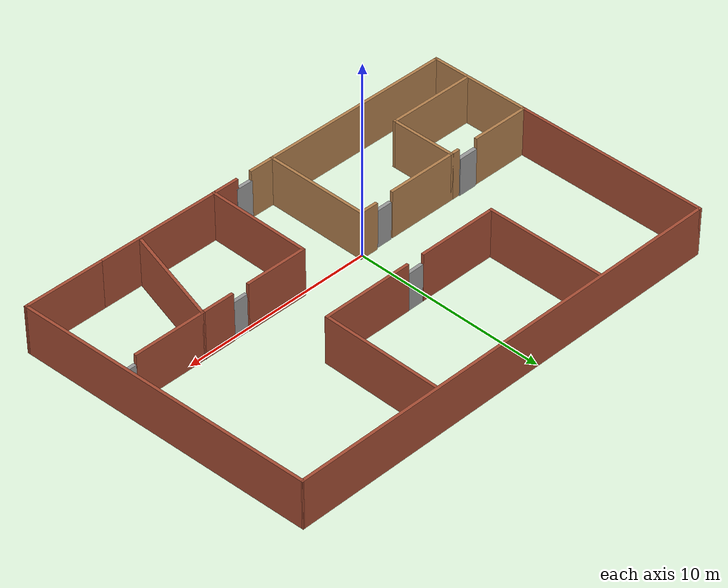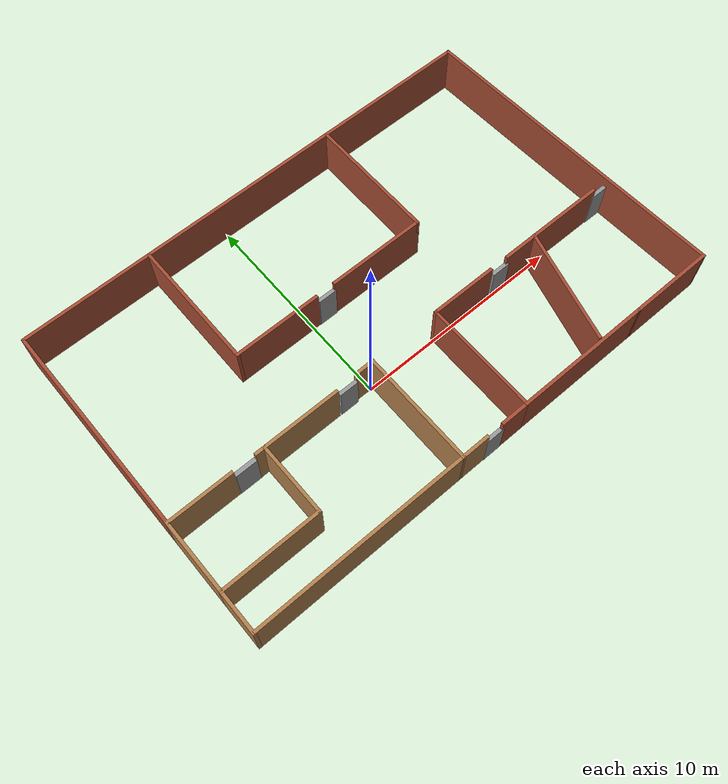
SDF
<?xml version='1.0'?>
<sdf version='1.7'>
  <model name='Building'>
    <pose>2.00147 2.363 0 0 -0 0</pose>
    <link name='Door_0'>
      <collision name='Door_0_Collision'>
        <geometry>
          <box>
            <size>1.03059 0.2 2</size>
          </box>
        </geometry>
        <pose>0 0 1 0 -0 0</pose>
      </collision>
      <visual name='Door_0_Visual'>
        <pose>0 0 1 0 -0 0</pose>
        <geometry>
          <box>
            <size>1.03059 0.2 2</size>
          </box>
        </geometry>
        <material>
          <script>
            <uri>file://media/materials/scripts/gazebo.material</uri>
            <name>Gazebo/Grey</name>
          </script>
        </material>
      </visual>
      <pose>-8.38918 -2.3477 0 0 -0 0</pose>
    </link>
    <link name='Door_1'>
      <collision name='Door_1_Collision'>
        <geometry>
          <box>
            <size>0.9 0.17 2</size>
          </box>
        </geometry>
        <pose>0 0 1 0 -0 0</pose>
      </collision>
      <visual name='Door_1_Visual'>
        <pose>0 0 1 0 -0 0</pose>
        <geometry>
          <box>
            <size>0.9 0.17 2</size>
          </box>
        </geometry>
        <material>
          <script>
            <uri>file://media/materials/scripts/gazebo.material</uri>
            <name>Gazebo/Grey</name>
          </script>
        </material>
      </visual>
      <pose>-3.20947 -2.363 0 0 -0 0</pose>
    </link>
    <link name='Door_3'>
      <collision name='Door_3_Collision'>
        <geometry>
          <box>
            <size>0.9 0.17 2</size>
          </box>
        </geometry>
        <pose>0 0 1 0 -0 0</pose>
      </collision>
      <visual name='Door_3_Visual'>
        <pose>0 0 1 0 -0 0</pose>
        <geometry>
          <box>
            <size>0.9 0.17 2</size>
          </box>
        </geometry>
        <material>
          <script>
            <uri>file://media/materials/scripts/gazebo.material</uri>
            <name>Gazebo/Grey</name>
          </script>
        </material>
      </visual>
      <pose>-0.116131 -7.63713 0 0 -0 0</pose>
    </link>
    <link name='Door_4'>
      <collision name='Door_4_Collision'>
        <geometry>
          <box>
            <size>0.9 0.17 2</size>
          </box>
        </geometry>
        <pose>0 0 1 0 -0 0</pose>
      </collision>
      <visual name='Door_4_Visual'>
        <pose>0 0 1 0 -0 0</pose>
        <geometry>
          <box>
            <size>0.9 0.17 2</size>
          </box>
        </geometry>
        <material>
          <script>
            <uri>file://media/materials/scripts/gazebo.material</uri>
            <name>Gazebo/Grey</name>
          </script>
        </material>
      </visual>
      <pose>5.2614 -2.33035 0 0 -0 0</pose>
    </link>
    <link name='Door_5'>
      <collision name='Door_5_Collision'>
        <geometry>
          <box>
            <size>0.9 0.17 2</size>
          </box>
        </geometry>
        <pose>0 0 1 0 -0 0</pose>
      </collision>
      <visual name='Door_5_Visual'>
        <pose>0 0 1 0 -0 0</pose>
        <geometry>
          <box>
            <size>0.9 0.17 2</size>
          </box>
        </geometry>
        <material>
          <script>
            <uri>file://media/materials/scripts/gazebo.material</uri>
            <name>Gazebo/Grey</name>
          </script>
        </material>
      </visual>
      <pose>11.2932 -2.30572 0 0 -0 0</pose>
    </link>
    <link name='Door_6'>
      <collision name='Door_6_Collision'>
        <geometry>
          <box>
            <size>0.9 0.17 2</size>
          </box>
        </geometry>
        <pose>0 0 1 0 -0 0</pose>
      </collision>
      <visual name='Door_6_Visual'>
        <pose>0 0 1 0 -0 0</pose>
        <geometry>
          <box>
            <size>0.9 0.17 2</size>
          </box>
        </geometry>
        <material>
          <script>
            <uri>file://media/materials/scripts/gazebo.material</uri>
            <name>Gazebo/Grey</name>
          </script>
        </material>
      </visual>
      <pose>-1.17075 1.46324 0 0 -0 0</pose>
    </link>
    <link name='Wall_0'>
      <collision name='Wall_0_Collision'>
        <geometry>
          <box>
            <size>10.15 0.15 2.5</size>
          </box>
        </geometry>
        <pose>0 0 1.25 0 -0 0</pose>
      </collision>
      <visual name='Wall_0_Visual'>
        <pose>0 0 1.25 0 -0 0</pose>
        <geometry>
          <box>
            <size>10.15 0.15 2.5</size>
          </box>
        </geometry>
        <material>
          <script>
            <uri>file://media/materials/scripts/gazebo.material</uri>
            <name>Gazebo/Bricks</name>
          </script>
          <ambient>1 1 1 1</ambient>
        </material>
        <meta>
          <layer>0</layer>
        </meta>
      </visual>
      <pose>-12.0015 2.637 0 0 -0 1.5708</pose>
    </link>
    <link name='Wall_10'>
      <collision name='Wall_10_Collision'>
        <geometry>
          <box>
            <size>3.5 0.15 2.5</size>
          </box>
        </geometry>
        <pose>0 0 1.25 0 -0 0</pose>
      </collision>
      <visual name='Wall_10_Visual'>
        <pose>0 0 1.25 0 -0 0</pose>
        <geometry>
          <box>
            <size>3.5 0.15 2.5</size>
          </box>
        </geometry>
        <material>
          <script>
            <uri>file://media/materials/scripts/gazebo.material</uri>
            <name>Gazebo/Wood</name>
          </script>
          <ambient>1 1 1 1</ambient>
        </material>
        <meta>
          <layer>0</layer>
        </meta>
      </visual>
      <pose>-7.40147 -4.038 0 0 -0 -1.5708</pose>
    </link>
    <link name='Wall_11'>
      <collision name='Wall_11_Collision'>
        <geometry>
          <box>
            <size>4.75 0.15 2.5</size>
          </box>
        </geometry>
        <pose>0 0 1.25 0 -0 0</pose>
      </collision>
      <visual name='Wall_11_Visual'>
        <pose>0 0 1.25 0 -0 0</pose>
        <geometry>
          <box>
            <size>4.75 0.15 2.5</size>
          </box>
        </geometry>
        <material>
          <script>
            <uri>file://media/materials/scripts/gazebo.material</uri>
            <name>Gazebo/Wood</name>
          </script>
          <ambient>1 1 1 1</ambient>
        </material>
        <meta>
          <layer>0</layer>
        </meta>
      </visual>
      <pose>-9.70147 -5.713 0 0 -0 3.14159</pose>
    </link>
    <link name='Wall_12'>
      <collision name='Wall_12_Collision'>
        <geometry>
          <box>
            <size>3.5 0.15 2.5</size>
          </box>
        </geometry>
        <pose>0 0 1.25 0 -0 0</pose>
      </collision>
      <visual name='Wall_12_Visual'>
        <pose>0 0 1.25 0 -0 0</pose>
        <geometry>
          <box>
            <size>3.5 0.15 2.5</size>
          </box>
        </geometry>
        <material>
          <script>
            <uri>file://media/materials/scripts/gazebo.material</uri>
            <name>Gazebo/Wood</name>
          </script>
          <ambient>1 1 1 1</ambient>
        </material>
        <meta>
          <layer>0</layer>
        </meta>
      </visual>
      <pose>-12.0015 -4.038 0 0 -0 1.5708</pose>
    </link>
    <link name='Wall_14'>
      <collision name='Wall_14_Collision'>
        <geometry>
          <box>
            <size>3.75 0.15 2.5</size>
          </box>
        </geometry>
        <pose>0 0 1.25 0 -0 0</pose>
      </collision>
      <visual name='Wall_14_Visual'>
        <pose>0 0 1.25 0 -0 0</pose>
        <geometry>
          <box>
            <size>3.75 0.15 2.5</size>
          </box>
        </geometry>
        <material>
          <script>
            <uri>file://media/materials/scripts/gazebo.material</uri>
            <name>Gazebo/Wood</name>
          </script>
          <ambient>1 1 1 1</ambient>
        </material>
        <meta>
          <layer>0</layer>
        </meta>
      </visual>
      <pose>-5.60147 -2.363 0 0 -0 0</pose>
    </link>
    <link name='Wall_16'>
      <collision name='Wall_16_Collision'>
        <geometry>
          <box>
            <size>1 0.15 2.5</size>
          </box>
        </geometry>
        <pose>0 0 1.25 0 -0 0</pose>
      </collision>
      <visual name='Wall_16_Visual'>
        <pose>0 0 1.25 0 -0 0</pose>
        <geometry>
          <box>
            <size>1 0.15 2.5</size>
          </box>
        </geometry>
        <material>
          <script>
            <uri>file://media/materials/scripts/gazebo.material</uri>
            <name>Gazebo/Wood</name>
          </script>
          <ambient>1 1 1 1</ambient>
        </material>
        <meta>
          <layer>0</layer>
        </meta>
      </visual>
      <pose>-2.26166 -2.28491 0 0 -0 -0.000212</pose>
    </link>
    <link name='Wall_17'>
      <collision name='Wall_17_Collision'>
        <geometry>
          <box>
            <size>5.5 0.15 2.5</size>
          </box>
        </geometry>
        <pose>0 0 1.25 0 -0 0</pose>
      </collision>
      <visual name='Wall_17_Visual'>
        <pose>0 0 1.25 0 -0 0</pose>
        <geometry>
          <box>
            <size>5.5 0.15 2.5</size>
          </box>
        </geometry>
        <material>
          <script>
            <uri>file://media/materials/scripts/gazebo.material</uri>
            <name>Gazebo/Wood</name>
          </script>
          <ambient>1 1 1 1</ambient>
        </material>
        <meta>
          <layer>0</layer>
        </meta>
      </visual>
      <pose>-1.83397 -4.96 0 0 -0 -1.56986</pose>
    </link>
    <link name='Wall_18'>
      <collision name='Wall_18_Collision'>
        <geometry>
          <box>
            <size>10.32 0.15 2.5</size>
          </box>
        </geometry>
        <pose>0 0 1.25 0 -0 0</pose>
      </collision>
      <visual name='Wall_18_Visual'>
        <pose>0 0 1.25 0 -0 0</pose>
        <geometry>
          <box>
            <size>10.32 0.15 2.5</size>
          </box>
        </geometry>
        <material>
          <script>
            <uri>file://media/materials/scripts/gazebo.material</uri>
            <name>Gazebo/Wood</name>
          </script>
          <ambient>1 1 1 1</ambient>
        </material>
        <meta>
          <layer>0</layer>
        </meta>
      </visual>
      <pose>-6.91647 -7.635 0 0 -0 3.14159</pose>
    </link>
    <link name='Wall_19'>
      <collision name='Wall_19_Collision'>
        <geometry>
          <box>
            <size>2.07291 0.15 2.5</size>
          </box>
        </geometry>
        <pose>0 0 1.25 0 -0 0</pose>
      </collision>
      <visual name='Wall_19_Visual'>
        <pose>0 0 1.25 0 -0 0</pose>
        <geometry>
          <box>
            <size>2.07291 0.15 2.5</size>
          </box>
        </geometry>
        <material>
          <script>
            <uri>file://media/materials/scripts/gazebo.material</uri>
            <name>Gazebo/Wood</name>
          </script>
          <ambient>1 1 1 1</ambient>
        </material>
        <meta>
          <layer>0</layer>
        </meta>
      </visual>
      <pose>-12.0015 -6.674 0 0 -0 1.5708</pose>
    </link>
    <link name='Wall_2'>
      <collision name='Wall_2_Collision'>
        <geometry>
          <box>
            <size>3.15035 0.15 2.5</size>
          </box>
        </geometry>
        <pose>0 0 1.25 0 -0 0</pose>
      </collision>
      <visual name='Wall_2_Visual'>
        <pose>0 0 1.25 0 -0 0</pose>
        <geometry>
          <box>
            <size>3.15035 0.15 2.5</size>
          </box>
        </geometry>
        <material>
          <script>
            <uri>file://media/materials/scripts/gazebo.material</uri>
            <name>Gazebo/Wood</name>
          </script>
          <ambient>1 1 1 1</ambient>
        </material>
        <meta>
          <layer>0</layer>
        </meta>
      </visual>
      <pose>-10.5015 -2.363 0 0 -0 0</pose>
    </link>
    <link name='Wall_21'>
      <collision name='Wall_21_Collision'>
        <geometry>
          <box>
            <size>5.49787 0.15 2.5</size>
          </box>
        </geometry>
        <pose>0 0 1.25 0 -0 0</pose>
      </collision>
      <visual name='Wall_21_Visual'>
        <pose>0 0 1.25 0 -0 0</pose>
        <geometry>
          <box>
            <size>5.49787 0.15 2.5</size>
          </box>
        </geometry>
        <material>
          <script>
            <uri>file://media/materials/scripts/gazebo.material</uri>
            <name>Gazebo/Bricks</name>
          </script>
          <ambient>1 1 1 1</ambient>
        </material>
        <meta>
          <layer>0</layer>
        </meta>
      </visual>
      <pose>1.58253 -4.961 0 0 -0 1.5708</pose>
    </link>
    <link name='Wall_22'>
      <collision name='Wall_22_Collision'>
        <geometry>
          <box>
            <size>3.25 0.15 2.5</size>
          </box>
        </geometry>
        <pose>0 0 1.25 0 -0 0</pose>
      </collision>
      <visual name='Wall_22_Visual'>
        <pose>0 0 1.25 0 -0 0</pose>
        <geometry>
          <box>
            <size>3.25 0.15 2.5</size>
          </box>
        </geometry>
        <material>
          <script>
            <uri>file://media/materials/scripts/gazebo.material</uri>
            <name>Gazebo/Bricks</name>
          </script>
          <ambient>1 1 1 1</ambient>
        </material>
        <meta>
          <layer>0</layer>
        </meta>
      </visual>
      <pose>3.13228 -2.28707 0 0 -0 -4.2e-05</pose>
    </link>
    <link name='Wall_24'>
      <collision name='Wall_24_Collision'>
        <geometry>
          <box>
            <size>1.395 0.15 2.5</size>
          </box>
        </geometry>
        <pose>0 0 1.25 0 -0 0</pose>
      </collision>
      <visual name='Wall_24_Visual'>
        <pose>0 0 1.25 0 -0 0</pose>
        <geometry>
          <box>
            <size>1.395 0.15 2.5</size>
          </box>
        </geometry>
        <material>
          <script>
            <uri>file://media/materials/scripts/gazebo.material</uri>
            <name>Gazebo/Wood</name>
          </script>
          <ambient>1 1 1 1</ambient>
        </material>
        <meta>
          <layer>0</layer>
        </meta>
      </visual>
      <pose>-1.20897 -7.635 0 0 -0 0</pose>
    </link>
    <link name='Wall_26'>
      <collision name='Wall_26_Collision'>
        <geometry>
          <box>
            <size>1.42412 0.15 2.5</size>
          </box>
        </geometry>
        <pose>0 0 1.25 0 -0 0</pose>
      </collision>
      <visual name='Wall_26_Visual'>
        <pose>0 0 1.25 0 -0 0</pose>
        <geometry>
          <box>
            <size>1.42412 0.15 2.5</size>
          </box>
        </geometry>
        <material>
          <script>
            <uri>file://media/materials/scripts/gazebo.material</uri>
            <name>Gazebo/Bricks</name>
          </script>
          <ambient>1 1 1 1</ambient>
        </material>
        <meta>
          <layer>0</layer>
        </meta>
      </visual>
      <pose>0.945527 -7.636 0 0 -0 0.00157</pose>
    </link>
    <link name='Wall_28'>
      <collision name='Wall_28_Collision'>
        <geometry>
          <box>
            <size>1.75 0.15 2.5</size>
          </box>
        </geometry>
        <pose>0 0 1.25 0 -0 0</pose>
      </collision>
      <visual name='Wall_28_Visual'>
        <pose>0 0 1.25 0 -0 0</pose>
        <geometry>
          <box>
            <size>1.75 0.15 2.5</size>
          </box>
        </geometry>
        <material>
          <script>
            <uri>file://media/materials/scripts/gazebo.material</uri>
            <name>Gazebo/Bricks</name>
          </script>
          <ambient>1 1 1 1</ambient>
        </material>
        <meta>
          <layer>0</layer>
        </meta>
      </visual>
      <pose>6.46195 -2.28758 0 0 -0 0</pose>
    </link>
    <link name='Wall_30'>
      <collision name='Wall_30_Collision'>
        <geometry>
          <box>
            <size>6.5664 0.15 2.5</size>
          </box>
        </geometry>
        <pose>0 0 1.25 0 -0 0</pose>
      </collision>
      <visual name='Wall_30_Visual'>
        <pose>0 0 1.25 0 -0 0</pose>
        <geometry>
          <box>
            <size>6.5664 0.15 2.5</size>
          </box>
        </geometry>
        <material>
          <script>
            <uri>file://media/materials/scripts/gazebo.material</uri>
            <name>Gazebo/Bricks</name>
          </script>
          <ambient>1 1 1 1</ambient>
        </material>
        <meta>
          <layer>0</layer>
        </meta>
      </visual>
      <pose>4.79053 -7.636 0 0 -0 -0.000312</pose>
    </link>
    <link name='Wall_32'>
      <collision name='Wall_32_Collision'>
        <geometry>
          <box>
            <size>5.5 0.15 2.5</size>
          </box>
        </geometry>
        <pose>0 0 1.25 0 -0 0</pose>
      </collision>
      <visual name='Wall_32_Visual'>
        <pose>0 0 1.25 0 -0 0</pose>
        <geometry>
          <box>
            <size>5.5 0.15 2.5</size>
          </box>
        </geometry>
        <material>
          <script>
            <uri>file://media/materials/scripts/gazebo.material</uri>
            <name>Gazebo/Bricks</name>
          </script>
          <ambient>1 1 1 1</ambient>
        </material>
        <meta>
          <layer>0</layer>
        </meta>
      </visual>
      <pose>6.56961 -4.87143 0 0 -0 -1.8326</pose>
    </link>
    <link name='Wall_34'>
      <collision name='Wall_34_Collision'>
        <geometry>
          <box>
            <size>23.5 0.15 2.5</size>
          </box>
        </geometry>
        <pose>0 0 1.25 0 -0 0</pose>
      </collision>
      <visual name='Wall_34_Visual'>
        <pose>0 0 1.25 0 -0 0</pose>
        <geometry>
          <box>
            <size>23.5 0.15 2.5</size>
          </box>
        </geometry>
        <material>
          <script>
            <uri>file://media/materials/scripts/gazebo.material</uri>
            <name>Gazebo/Bricks</name>
          </script>
          <ambient>1 1 1 1</ambient>
        </material>
        <meta>
          <layer>0</layer>
        </meta>
      </visual>
      <pose>-0.326473 7.637 0 0 -0 0</pose>
    </link>
    <link name='Wall_35'>
      <collision name='Wall_35_Collision'>
        <geometry>
          <box>
            <size>15.4378 0.15 2.5</size>
          </box>
        </geometry>
        <pose>0 0 1.25 0 -0 0</pose>
      </collision>
      <visual name='Wall_35_Visual'>
        <pose>0 0 1.25 0 -0 0</pose>
        <geometry>
          <box>
            <size>15.4378 0.15 2.5</size>
          </box>
        </geometry>
        <material>
          <script>
            <uri>file://media/materials/scripts/gazebo.material</uri>
            <name>Gazebo/Bricks</name>
          </script>
          <ambient>1 1 1 1</ambient>
        </material>
        <meta>
          <layer>0</layer>
        </meta>
      </visual>
      <pose>11.6735 -0 0 0 -0 -1.52827</pose>
    </link>
    <link name='Wall_36'>
      <collision name='Wall_36_Collision'>
        <geometry>
          <box>
            <size>4.15 0.15 2.5</size>
          </box>
        </geometry>
        <pose>0 0 1.25 0 -0 0</pose>
      </collision>
      <visual name='Wall_36_Visual'>
        <pose>0 0 1.25 0 -0 0</pose>
        <geometry>
          <box>
            <size>4.15 0.15 2.5</size>
          </box>
        </geometry>
        <material>
          <script>
            <uri>file://media/materials/scripts/gazebo.material</uri>
            <name>Gazebo/Bricks</name>
          </script>
          <ambient>1 1 1 1</ambient>
        </material>
        <meta>
          <layer>0</layer>
        </meta>
      </visual>
      <pose>9.99853 -7.637 0 0 -0 3.14159</pose>
    </link>
    <link name='Wall_39'>
      <collision name='Wall_39_Collision'>
        <geometry>
          <box>
            <size>3.75 0.15 2.5</size>
          </box>
        </geometry>
        <pose>0 0 1.25 0 -0 0</pose>
      </collision>
      <visual name='Wall_39_Visual'>
        <pose>0 0 1.25 0 -0 0</pose>
        <geometry>
          <box>
            <size>3.75 0.15 2.5</size>
          </box>
        </geometry>
        <material>
          <script>
            <uri>file://media/materials/scripts/gazebo.material</uri>
            <name>Gazebo/Bricks</name>
          </script>
          <ambient>1 1 1 1</ambient>
        </material>
        <meta>
          <layer>0</layer>
        </meta>
      </visual>
      <pose>9.06195 -2.28758 0 0 -0 0</pose>
    </link>
    <link name='Wall_4'>
      <collision name='Wall_4_Collision'>
        <geometry>
          <box>
            <size>0.55 0.15 2.5</size>
          </box>
        </geometry>
        <pose>0 0 1.25 0 -0 0</pose>
      </collision>
      <visual name='Wall_4_Visual'>
        <pose>0 0 1.25 0 -0 0</pose>
        <geometry>
          <box>
            <size>0.55 0.15 2.5</size>
          </box>
        </geometry>
        <material>
          <script>
            <uri>file://media/materials/scripts/gazebo.material</uri>
            <name>Gazebo/Wood</name>
          </script>
          <ambient>1 1 1 1</ambient>
        </material>
        <meta>
          <layer>0</layer>
        </meta>
      </visual>
      <pose>-7.60147 -2.363 0 0 -0 0</pose>
    </link>
    <link name='Wall_41'>
      <collision name='Wall_41_Collision'>
        <geometry>
          <box>
            <size>6.25 0.15 2.5</size>
          </box>
        </geometry>
        <pose>0 0 1.25 0 -0 0</pose>
      </collision>
      <visual name='Wall_41_Visual'>
        <pose>0 0 1.25 0 -0 0</pose>
        <geometry>
          <box>
            <size>6.25 0.15 2.5</size>
          </box>
        </geometry>
        <material>
          <script>
            <uri>file://media/materials/scripts/gazebo.material</uri>
            <name>Gazebo/Bricks</name>
          </script>
          <ambient>1 1 1 1</ambient>
        </material>
        <meta>
          <layer>0</layer>
        </meta>
      </visual>
      <pose>-5.81016 4.52152 0 0 -0 -1.5708</pose>
    </link>
    <link name='Wall_42'>
      <collision name='Wall_42_Collision'>
        <geometry>
          <box>
            <size>4.25 0.15 2.5</size>
          </box>
        </geometry>
        <pose>0 0 1.25 0 -0 0</pose>
      </collision>
      <visual name='Wall_42_Visual'>
        <pose>0 0 1.25 0 -0 0</pose>
        <geometry>
          <box>
            <size>4.25 0.15 2.5</size>
          </box>
        </geometry>
        <material>
          <script>
            <uri>file://media/materials/scripts/gazebo.material</uri>
            <name>Gazebo/Bricks</name>
          </script>
          <ambient>1 1 1 1</ambient>
        </material>
        <meta>
          <layer>0</layer>
        </meta>
      </visual>
      <pose>-3.76016 1.47152 0 0 -0 0</pose>
    </link>
    <link name='Wall_44'>
      <collision name='Wall_44_Collision'>
        <geometry>
          <box>
            <size>4.75 0.15 2.5</size>
          </box>
        </geometry>
        <pose>0 0 1.25 0 -0 0</pose>
      </collision>
      <visual name='Wall_44_Visual'>
        <pose>0 0 1.25 0 -0 0</pose>
        <geometry>
          <box>
            <size>4.75 0.15 2.5</size>
          </box>
        </geometry>
        <material>
          <script>
            <uri>file://media/materials/scripts/gazebo.material</uri>
            <name>Gazebo/Bricks</name>
          </script>
          <ambient>1 1 1 1</ambient>
        </material>
        <meta>
          <layer>0</layer>
        </meta>
      </visual>
      <pose>1.60457 1.48482 0 0 -0 0</pose>
    </link>
    <link name='Wall_45'>
      <collision name='Wall_45_Collision'>
        <geometry>
          <box>
            <size>6.25 0.15 2.5</size>
          </box>
        </geometry>
        <pose>0 0 1.25 0 -0 0</pose>
      </collision>
      <visual name='Wall_45_Visual'>
        <pose>0 0 1.25 0 -0 0</pose>
        <geometry>
          <box>
            <size>6.25 0.15 2.5</size>
          </box>
        </geometry>
        <material>
          <script>
            <uri>file://media/materials/scripts/gazebo.material</uri>
            <name>Gazebo/Bricks</name>
          </script>
          <ambient>1 1 1 1</ambient>
        </material>
        <meta>
          <layer>0</layer>
        </meta>
      </visual>
      <pose>3.90457 4.53482 0 0 -0 1.5708</pose>
    </link>
    <static>1</static>
  </model>
</sdf>
